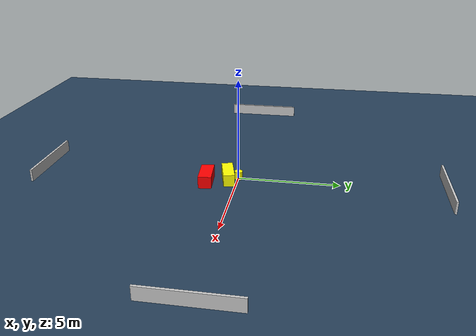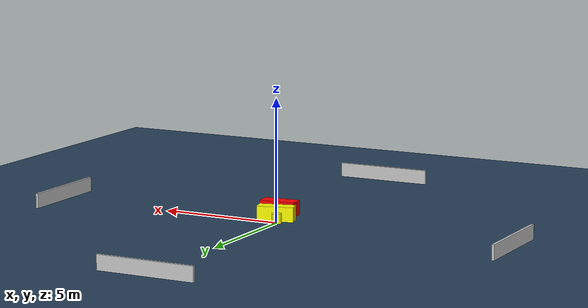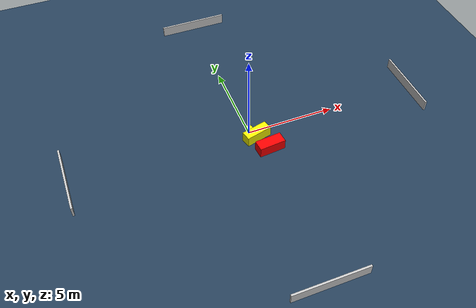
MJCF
<?xml version="1.0" ?>
<mujoco model="generated_environment">
  <option timestep="0.01" integrator="RK4" cone="elliptic"/>
  <default>
    <geom density="1"/>
  </default>
  <asset>
    <texture builtin="gradient" height="3072" name="skybox" rgb1="0.3 0.5 0.7" rgb2="0 0 0" type="skybox" width="512"/>
    <texture builtin="checker" height="300" name="groundplane" rgb1="0.2 0.3 0.4" rgb2="0.1 0.2 0.3" type="2d" width="300"/>
    <material name="groundplane" reflectance="0.2" texrepeat="5 5" texture="groundplane"/>
  </asset>
  <worldbody>
    <light dir="0 0 -1" directional="true" pos="0 0 1.5"/>
    <geom condim="3" friction="0.5 0.005 0.001" material="groundplane" name="floor" pos="0 0 0" size="0 0 0.05" type="plane"/>
    <body name="walls">
      <geom name="wall_1" condim="4" pos="-10.0 0.0 0.3" rgba="0.800000011920929 0.800000011920929 0.800000011920929 1.0" size="0.05 2.0 0.3" type="box"/>
      <geom name="wall_2" condim="4" pos="10.0 0.0 0.3" rgba="0.800000011920929 0.800000011920929 0.800000011920929 1.0" size="0.05 2.0 0.3" type="box"/>
      <geom name="wall_3" condim="4" pos="0.0 -10.0 0.3" rgba="0.800000011920929 0.800000011920929 0.800000011920929 1.0" size="2.0 0.05 0.3" type="box"/>
      <geom name="wall_4" condim="4" pos="0.0 10.0 0.3" rgba="0.800000011920929 0.800000011920929 0.800000011920929 1.0" size="2.0 0.05 0.3" type="box"/>
    </body>
    <body name="robot">
      <joint name="joint_x" type="slide" pos="0 0 0" axis="1 0 0"/>
      <joint name="joint_y" type="slide" pos="0 0 0" axis="0 1 0"/>
      <geom name="robot" type="cylinder" pos="0.0 0.0 0.2" size="0.2 0.2 0.0" mass="5.0" friction="1.0 0.005 0.0001" condim="4" rgba="1.0 1.0 0.0 1.0"/>
    </body>
    <body name="obstacle_1_movable">
      <geom name="obstacle_1_movable" condim="4" pos="0.25983258625606687 -0.4807144450611501 0.3" euler="0 0 14.279783340327224" friction="0.0 0.005 0.001" rgba="1.0 1.0 0.0 1.0" size="0.7434176537549777 0.27587827285759225 0.3" type="box" mass="0.1"/>
      <joint type="free"/>
    </body>
    <body name="obstacle_2_static">
      <geom name="obstacle_2_static" condim="4" pos="0.6407775464065327 -1.49251723112539 0.3" euler="0 0 185.338353880702" friction="0.0 0.005 0.001" rgba="1.0 0.0 0.0 1.0" size="0.73734576425406 0.3202072306807018 0.3" type="box"/>
    </body>
  </worldbody>
  <actuator>
    <motor name="actuator_x" joint="joint_x" gear="1" ctrlrange="-1 1"/>
    <motor name="actuator_y" joint="joint_y" gear="1" ctrlrange="-1 1"/>
  </actuator>
</mujoco>
